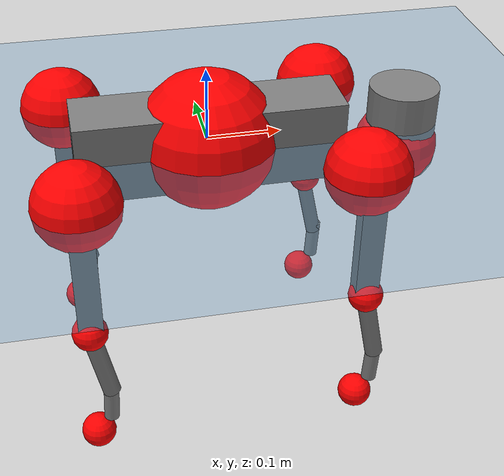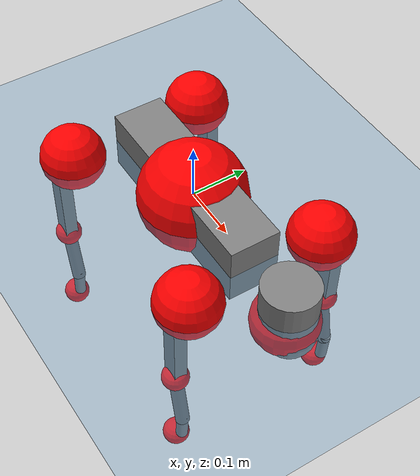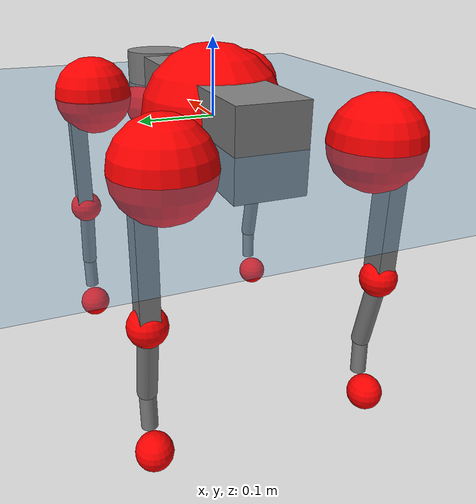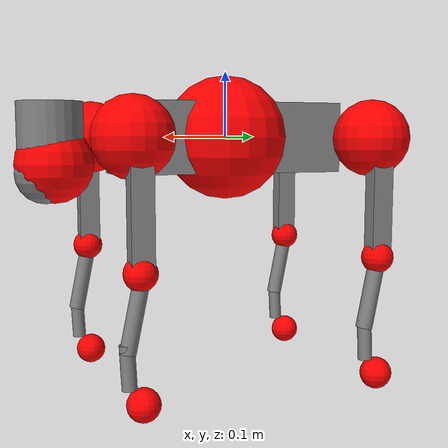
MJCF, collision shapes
<mujoco model="go2">
  <compiler angle="radian" assetdir="assets" balanceinertia="true" inertiafromgeom="false"/>

  <option timestep="0.005" density="1.2" viscosity="2e-05"/>

  <size nkey="1"/>

  <visual>
    <quality shadowsize="8192"/>
    <map shadowclip="0.5"/>
  </visual>

  <default>
    <default class="/">
      <geom contype="0" conaffinity="0" group="1" solref="-1000 -80"/>
      <site size="0.01 0.005 0.005" group="5"/>
      <general forcelimited="true" biastype="affine" gainprm="20" biasprm="0 -20 -0.5"/>
      <default class="go2">
        <joint armature="0.01" damping="0.01" frictionloss="0.2"/>
        <geom condim="1" margin="0.001"/>
        <default class="visual">
          <geom type="mesh" group="2"/>
        </default>
        <default class="collision">
          <geom group="3"/>
          <default class="foot">
            <geom size="0.022 0 0" condim="6" priority="1" friction="0.8 0.02 0.01" solimp="0.015 1 0.022"/>
          </default>
        </default>
        <default class="reward_collision_sphere">
          <geom group="5" rgba="1 0 0 1"/>
        </default>
      </default>
    </default>
  </default>

  <asset>
    <texture type="skybox" colorspace="auto" name="//unnamed_texture_0" builtin="gradient" rgb1="0.95 0.95 0.95" rgb2="0.95 0.95 0.95" width="100" height="600"/>
    <texture type="2d" colorspace="auto" name="texplane" builtin="checker" rgb1="0.345 0.575 0.748" rgb2="0.345 0.575 0.748" markrgb="1 1 1" width="512" height="512"/>
    <material name="MatPlane" class="/" texture="texplane" texuniform="true" texrepeat="2 2" specular="0.9"/>
    <material name="metal" class="/" rgba="0.9 0.95 0.95 1"/>
    <material name="black" class="/" rgba="0 0 0 1"/>
    <material name="white" class="/"/>
    <material name="gray" class="/" rgba="0.671705 0.692426 0.77427 1"/>
    <mesh name="base_0" class="/" file="base_0.obj"/>
    <mesh name="base_1" class="/" file="base_1.obj"/>
    <mesh name="base_2" class="/" file="base_2.obj"/>
    <mesh name="base_3" class="/" file="base_3.obj"/>
    <mesh name="base_4" class="/" file="base_4.obj"/>
    <mesh name="hip_0" class="/" file="hip_0.obj"/>
    <mesh name="hip_1" class="/" file="hip_1.obj"/>
    <mesh name="thigh_0" class="/" file="thigh_0.obj"/>
    <mesh name="thigh_1" class="/" file="thigh_1.obj"/>
    <mesh name="thigh_mirror_0" class="/" file="thigh_mirror_0.obj"/>
    <mesh name="thigh_mirror_1" class="/" file="thigh_mirror_1.obj"/>
    <mesh name="calf_0" class="/" file="calf_0.obj"/>
    <mesh name="calf_1" class="/" file="calf_1.obj"/>
    <mesh name="calf_mirror_0" class="/" file="calf_mirror_0.obj"/>
    <mesh name="calf_mirror_1" class="/" file="calf_mirror_1.obj"/>
    <mesh name="foot" class="/" file="foot.obj"/>
  </asset>

  <worldbody>
    <geom name="floor" class="/" size="100 100 0.125" type="plane" group="0" material="MatPlane"/>
    <light name="toplight_shadow" class="/" pos="0 0 5" dir="0.0990148 0.0990148 -0.990148" type="directional" ambient="0.04 0.04 0.04" diffuse="0.55 0.55 0.55" specular="0.12 0.12 0.12"/>
    <light name="toplight_fill" class="/" pos="0 0 5" dir="0.0990148 0.0990148 -0.990148" type="directional" castshadow="false" ambient="0.04 0.04 0.04" diffuse="0.3 0.3 0.3" specular="0.08 0.08 0.08"/>
    <body name="trunk" childclass="go2" pos="0.00054382 -0.000171974 -0.000601283" quat="1 0.000217168 -4.54427e-05 -1.67022e-05">
      <inertial pos="0.0187098 -0.00183225 -0.00540554" quat="-0.00200464 0.710924 0.00171119 0.703264" mass="5.91635" diaginertia="0.0839788 0.137968 0.0103619"/>
      <joint name="//unnamed_joint_0" type="free" armature="0" damping="0" frictionloss="0"/>
      <geom name="//unnamed_geom_1" class="visual" material="black" mesh="base_0"/>
      <geom name="//unnamed_geom_2" class="visual" material="black" mesh="base_1"/>
      <geom name="//unnamed_geom_3" class="visual" material="black" mesh="base_2"/>
      <geom name="//unnamed_geom_4" class="visual" material="white" mesh="base_3"/>
      <geom name="//unnamed_geom_5" class="visual" material="gray" mesh="base_4"/>
      <geom name="trunk_1" class="collision" size="0.179116 0.0445172 0.0542776" type="box"/>
      <geom name="trunk_2" class="collision" size="0.047612 0.0428508" pos="0.270971 0 0.00839813" type="cylinder"/>
      <geom name="trunk_3" class="collision" size="0.0447552" pos="0.278577 0 -0.0503888"/>
      <geom name="//unnamed_geom_9" class="reward_collision_sphere" size="0.0952239"/>
      <geom name="//unnamed_geom_10" class="reward_collision_sphere" size="0.0571344" pos="0.266217 0 -0.0377916"/>
      <site name="imu" pos="-0.0362474 -0.00105793 0.0445906" size="0.00952239"/>
      <camera name="track" pos="0 -2.13226 0" quat="0.707107 0.707107 0 0" mode="trackcom"/>
      <camera name="ego_camera" pos="0.296642 0 0.0377916" quat="-0.5 -0.5 0.5 0.5"/>
      <body name="FL_hip" pos="0.183602 0.0507457 0.000770077" quat="1 0.000231731 0.0001824 3.33299e-05">
        <inertial pos="-0.0031519 0.00284795 -0.000799335" quat="0.497061 0.499176 0.505309 0.498414" mass="0.569589" diaginertia="0.000667247 0.000822576 0.000197504"/>
        <joint name="FL_hip_joint" pos="0 0 0" axis="0.999942 -0.00793556 0.0072152" stiffness="0.00383035" range="-1.06059 1.04344" armature="0.0105846" damping="0.00157262" frictionloss="0.192438"/>
        <geom name="//unnamed_geom_11" class="visual" material="metal" mesh="hip_0"/>
        <geom name="//unnamed_geom_12" class="visual" material="gray" mesh="hip_1"/>
        <geom name="//unnamed_geom_13" class="collision" size="0.043803 0.0190448" pos="0 0.0852903 0" quat="0.707107 0.707107 0 0" type="cylinder"/>
        <geom name="//unnamed_geom_14" class="reward_collision_sphere" size="0.0571344" pos="0 0.074629 0"/>
        <body name="FL_thigh" pos="-0.000818993 0.103027 0.00208422" quat="1 0.000158148 0.00045499 0.00028333">
          <inertial pos="-0.00467205 -0.0236391 -0.0254557" quat="0.831876 0.0827352 -0.0192134 0.548423" mass="1.00153" diaginertia="0.00453474 0.00809891 0.000370138"/>
          <joint name="FL_thigh_joint" pos="0 0 0" axis="1.80254e-05 0.999998 0.00221572" range="-1.55388 3.47389" armature="0.00948278" damping="0.0150822" frictionloss="0.173123"/>
          <geom name="//unnamed_geom_15" class="visual" material="metal" mesh="thigh_0"/>
          <geom name="//unnamed_geom_16" class="visual" material="gray" mesh="thigh_1"/>
          <geom name="//unnamed_geom_17" class="collision" size="0.101413 0.0116649 0.0161881" pos="0 0 -0.0894401" quat="0.707107 0 0.707107 0" type="box"/>
          <body name="FL_calf" pos="0.000627458 -0.00200292 -0.181492" quat="1 5.59866e-05 0.000166887 0.000609031">
            <inertial pos="0.00684518 -0.000673541 -0.117276" quat="0.710709 0.00319773 -0.000769061 0.703478" mass="0.208735" diaginertia="0.00116309 0.00200767 2.24456e-05"/>
            <joint name="FL_calf_joint" pos="0 0 0" axis="-0.0074545 0.999965 0.00369628" stiffness="0.000621817" range="-2.73255 -0.856422" armature="0.00927572" damping="0" frictionloss="0.192509"/>
            <geom name="//unnamed_geom_18" class="visual" material="gray" mesh="calf_0"/>
            <geom name="//unnamed_geom_19" class="visual" material="black" mesh="calf_1"/>
            <geom name="FL_calf0" class="collision" size="0.0114269 0.0571344" pos="0.0076062 0 -0.0503888" quat="0.994493 0 -0.104807 0" type="cylinder"/>
            <geom name="//unnamed_geom_21" class="collision" size="0.0104746 0.0309478" pos="0.0190155 0 -0.124292" quat="0.999688 0 0.0249974 0" type="cylinder"/>
            <geom name="//unnamed_geom_22" class="visual" pos="0 0 -0.17888" quat="1 0 0 0" material="black" mesh="foot"/>
            <geom name="FL_foot" class="foot" size="0.0181833" pos="-0.00190155 0 -0.17888"/>
            <geom name="//unnamed_geom_24" class="reward_collision_sphere" size="0.023806"/>
            <geom name="//unnamed_geom_25" class="reward_collision_sphere" size="0.023806" pos="-0.00190155 0 -0.17888"/>
            <site name="FL_foot" class="foot" pos="-0.00190155 0 -0.17888" size="0.00952239"/>
          </body>
        </body>
      </body>
      <body name="FR_hip" pos="0.184222 -0.0490803 0.00102117" quat="1 -0.000114432 5.10021e-05 7.28547e-05">
        <inertial pos="-0.00321616 -0.00253488 0.000241401" quat="0.499115 0.504603 0.498459 0.497794" mass="0.591967" diaginertia="0.000695052 0.000820066 0.000200434"/>
        <joint name="FR_hip_joint" pos="0 0 0" axis="0.999984 -0.00228315 0.00525176" stiffness="0.00315662" range="-1.08826 1.05344" armature="0.00869" damping="0.0200153" frictionloss="0.172896"/>
        <geom name="//unnamed_geom_26" class="visual" pos="0 1.97157e-09 8.45648e-08" quat="4.63268e-05 1 0 0" material="metal" mesh="hip_0"/>
        <geom name="//unnamed_geom_27" class="visual" pos="0 3.19615e-09 -2.09161e-07" quat="4.63268e-05 1 0 0" material="gray" mesh="hip_1"/>
        <geom name="//unnamed_geom_28" class="collision" size="0.043803 0.0190448" pos="0 -0.0852903 0" quat="0.707107 0.707107 0 0" type="cylinder"/>
        <geom name="//unnamed_geom_29" class="reward_collision_sphere" size="0.0571344" pos="0 -0.074629 0"/>
        <body name="FR_thigh" pos="0.00123323 -0.0995371 -0.000129516" quat="1 1.1201e-05 -2.17019e-05 4.73101e-06">
          <inertial pos="-0.00331456 0.0241231 -0.0279003" quat="0.547449 -0.0206045 0.078289 0.832914" mass="0.955124" diaginertia="0.00459183 0.00795922 0.000358946"/>
          <joint name="FR_thigh_joint" pos="0 0 0" axis="0.0071835 -0.999966 -0.00393728" stiffness="0.001873" range="-3.44428 1.57918" armature="0.00968684" damping="0.00125603" frictionloss="0.214456"/>
          <geom name="//unnamed_geom_30" class="visual" material="metal" mesh="thigh_mirror_0"/>
          <geom name="//unnamed_geom_31" class="visual" material="gray" mesh="thigh_mirror_1"/>
          <geom name="//unnamed_geom_32" class="collision" size="0.101413 0.0116649 0.0161881" pos="0 0 -0.0894401" quat="0.707107 0 0.707107 0" type="box"/>
          <body name="FR_calf" pos="0.00172137 -0.00229751 -0.179583" quat="1 -0.000197099 -2.96341e-05 -3.28469e-05">
            <inertial pos="0.00608925 0.00040088 -0.116943" quat="0.70341 -0.00450826 0.00222231 0.710767" mass="0.208319" diaginertia="0.00112464 0.0019843 2.23261e-05"/>
            <joint name="FR_calf_joint" pos="0 0 0" axis="0.00155525 -0.999999 -0.000132046" stiffness="0.000725649" range="0.837943 2.73078" armature="0.0100096" damping="0.0105131" frictionloss="0.168974"/>
            <geom name="//unnamed_geom_33" class="visual" material="gray" mesh="calf_mirror_0"/>
            <geom name="//unnamed_geom_34" class="visual" material="black" mesh="calf_mirror_1"/>
            <geom name="FR_calf0" class="collision" size="0.0123791 0.0571344" pos="0.00950775 0 -0.0503888" quat="0.995004 0 -0.0998334 0" type="cylinder"/>
            <geom name="//unnamed_geom_36" class="collision" size="0.0104746 0.0309478" pos="0.0190155 0 -0.124292" quat="0.999688 0 0.0249974 0" type="cylinder"/>
            <geom name="//unnamed_geom_37" class="visual" pos="0 0 -0.17888" quat="1 0 0 0" material="black" mesh="foot"/>
            <geom name="FR_foot" class="foot" size="0.0201603" pos="-0.00190155 0 -0.17888"/>
            <geom name="//unnamed_geom_39" class="reward_collision_sphere" size="0.023806"/>
            <geom name="//unnamed_geom_40" class="reward_collision_sphere" size="0.023806" pos="-0.00190155 0 -0.17888"/>
            <site name="FR_foot" class="foot" pos="-0.00190155 0 -0.17888" size="0.00952239"/>
          </body>
        </body>
      </body>
      <body name="RL_hip" pos="-0.186222 0.0490885 -0.000700278" quat="1 4.60195e-05 -4.98868e-05 0.000120871">
        <inertial pos="0.004249 0.00448884 0.000810636" quat="0.505605 0.498087 0.49697 0.499293" mass="0.580574" diaginertia="0.000681744 0.000827507 0.000192038"/>
        <joint name="RL_hip_joint" pos="0 0 0" axis="-0.999864 0.0134079 -0.00959793" stiffness="0.00479538" range="-1.06983 0.996023" armature="0.00852461" damping="0.00649609" frictionloss="0.188609"/>
        <geom name="//unnamed_geom_41" class="visual" pos="-9.66657e-10 0 -1.89487e-07" quat="4.63268e-05 0 1 0" material="metal" mesh="hip_0"/>
        <geom name="//unnamed_geom_42" class="visual" pos="-1.56707e-09 0 -1.68048e-07" quat="4.63268e-05 0 1 0" material="gray" mesh="hip_1"/>
        <geom name="//unnamed_geom_43" class="collision" size="0.043803 0.0190448" pos="0 0.0852903 0" quat="0.707107 0.707107 0 0" type="cylinder"/>
        <geom name="//unnamed_geom_44" class="reward_collision_sphere" size="0.0571344" pos="0 0.074629 0"/>
        <body name="RL_thigh" pos="-0.000211974 0.0986762 0.000451733" quat="1 8.55993e-06 4.24599e-05 -6.94204e-05">
          <inertial pos="-0.0036353 -0.0221327 -0.0277219" quat="0.82873 0.085564 -0.0223537 0.552616" mass="0.993255" diaginertia="0.00463051 0.0080423 0.000362495"/>
          <joint name="RL_thigh_joint" pos="0 0 0" axis="0.00792765 0.999962 0.00360217" stiffness="0.0038248" range="-0.527533 4.53244" armature="0.00978061" damping="0.00584101" frictionloss="0.180713"/>
          <geom name="//unnamed_geom_45" class="visual" material="metal" mesh="thigh_0"/>
          <geom name="//unnamed_geom_46" class="visual" material="gray" mesh="thigh_1"/>
          <geom name="//unnamed_geom_47" class="collision" size="0.101413 0.0116649 0.0161881" pos="0 0 -0.0894401" quat="0.707107 0 0.707107 0" type="box"/>
          <body name="RL_calf" pos="0.000138716 -0.00014752 -0.177986" quat="1 -0.000427698 0.000324528 -0.000199874">
            <inertial pos="0.00601422 -0.000611478 -0.119094" quat="0.706498 0.00422879 -0.0152084 0.707539" mass="0.208349" diaginertia="0.0011634 0.00202236 2.15037e-05"/>
            <joint name="RL_calf_joint" pos="0 0 0" axis="-0.00496352 0.999936 0.0101806" stiffness="0.00176255" range="-2.72798 -0.834324" armature="0.00904363" damping="0.00375681" frictionloss="0.193936"/>
            <geom name="//unnamed_geom_48" class="visual" material="gray" mesh="calf_0"/>
            <geom name="//unnamed_geom_49" class="visual" material="black" mesh="calf_1"/>
            <geom name="RL_calf0" class="collision" size="0.0123791 0.0571344" pos="0.00950775 0 -0.0503888" quat="0.995004 0 -0.0998334 0" type="cylinder"/>
            <geom name="//unnamed_geom_51" class="collision" size="0.0104746 0.0309478" pos="0.0190155 0 -0.124292" quat="0.999688 0 0.0249974 0" type="cylinder"/>
            <geom name="//unnamed_geom_52" class="visual" pos="0 0 -0.17888" quat="1 0 0 0" material="black" mesh="foot"/>
            <geom name="RL_foot" class="foot" size="0.0188197" pos="-0.00190155 0 -0.17888"/>
            <geom name="//unnamed_geom_54" class="reward_collision_sphere" size="0.023806"/>
            <geom name="//unnamed_geom_55" class="reward_collision_sphere" size="0.023806" pos="-0.00190155 0 -0.17888"/>
            <site name="RL_foot" class="foot" pos="-0.00190155 0 -0.17888" size="0.00952239"/>
          </body>
        </body>
      </body>
      <body name="RR_hip" pos="-0.183212 -0.0525016 -0.000347497" quat="1 0.000225464 9.63721e-05 -0.000570927">
        <inertial pos="0.00298508 -0.00168136 0.00163735" quat="0.495523 0.497235 0.499864 0.507297" mass="0.590508" diaginertia="0.000690474 0.000825489 0.000196179"/>
        <joint name="RR_hip_joint" pos="0 0 0" axis="-1 -0.000108233 -0.000630699" range="-1.07627 1.09408" armature="0.00932259" damping="0.000810814" frictionloss="0.191557"/>
        <geom name="//unnamed_geom_56" class="visual" pos="9.70651e-10 1.97157e-09 -2.74052e-07" quat="2.14617e-09 4.63268e-05 4.63268e-05 -1" material="metal" mesh="hip_0"/>
        <geom name="//unnamed_geom_57" class="visual" pos="1.55719e-09 3.19615e-09 4.1113e-08" quat="2.14617e-09 4.63268e-05 4.63268e-05 -1" material="gray" mesh="hip_1"/>
        <geom name="//unnamed_geom_58" class="collision" size="0.043803 0.0190448" pos="0 -0.0852903 0" quat="0.707107 0.707107 0 0" type="cylinder"/>
        <geom name="//unnamed_geom_59" class="reward_collision_sphere" size="0.0571344" pos="0 -0.074629 0"/>
        <body name="RR_thigh" pos="0.000659373 -0.1019 0.00108206" quat="1 0.000207943 9.23224e-05 0.000105736">
          <inertial pos="-0.00276646 0.0243703 -0.0277496" quat="0.55157 -0.0205379 0.0846776 0.829565" mass="0.936333" diaginertia="0.00438923 0.00780815 0.000353374"/>
          <joint name="RR_thigh_joint" pos="0 0 0" axis="-0.00370787 -0.9999 0.0136256" stiffness="0.000709469" range="-4.53345 0.528866" armature="0.00997967" damping="0.0217368" frictionloss="0.189696"/>
          <geom name="//unnamed_geom_60" class="visual" material="metal" mesh="thigh_mirror_0"/>
          <geom name="//unnamed_geom_61" class="visual" material="gray" mesh="thigh_mirror_1"/>
          <geom name="//unnamed_geom_62" class="collision" size="0.101413 0.0116649 0.0161881" pos="0 0 -0.0894401" quat="0.707107 0 0.707107 0" type="box"/>
          <body name="RR_calf" pos="-0.00139823 0.000427906 -0.180778" quat="1 5.30408e-05 9.27237e-05 -0.00034955">
            <inertial pos="0.00677316 0.000645754 -0.118486" quat="0.702795 -0.00687957 0.00884237 0.711304" mass="0.210862" diaginertia="0.00116921 0.00206634 2.2401e-05"/>
            <joint name="RR_calf_joint" pos="0 0 0" axis="0.000818856 -0.999988 0.00485243" stiffness="0.00275813" range="0.837885 2.74509" armature="0.00844541" damping="0.00368358" frictionloss="0.190204"/>
            <geom name="//unnamed_geom_63" class="visual" material="gray" mesh="calf_mirror_0"/>
            <geom name="//unnamed_geom_64" class="visual" material="black" mesh="calf_mirror_1"/>
            <geom name="RR_calf0" class="collision" size="0.0123791 0.0571344" pos="0.00950775 0 -0.0503888" quat="0.995004 0 -0.0998334 0" type="cylinder"/>
            <geom name="//unnamed_geom_66" class="collision" size="0.0104746 0.0309478" pos="0.0190155 0 -0.124292" quat="0.999688 0 0.0249974 0" type="cylinder"/>
            <geom name="//unnamed_geom_67" class="visual" pos="0 0 -0.17888" quat="1 0 0 0" material="black" mesh="foot"/>
            <geom name="RR_foot" class="foot" size="0.0215162" pos="-0.00190155 0 -0.17888"/>
            <geom name="//unnamed_geom_69" class="reward_collision_sphere" size="0.023806"/>
            <geom name="//unnamed_geom_70" class="reward_collision_sphere" size="0.023806" pos="-0.00190155 0 -0.17888"/>
            <site name="RR_foot" class="foot" pos="-0.00190155 0 -0.17888" size="0.00952239"/>
          </body>
        </body>
      </body>
    </body>
  </worldbody>

  <contact>
    <pair class="/" geom1="floor" geom2="FL_foot" name="//unnamed_contact_0"/>
    <pair class="/" geom1="floor" geom2="FR_foot" name="//unnamed_contact_1"/>
    <pair class="/" geom1="floor" geom2="RL_foot" name="//unnamed_contact_2"/>
    <pair class="/" geom1="floor" geom2="RR_foot" name="//unnamed_contact_3"/>
  </contact>

  <actuator>
    <general name="FL_hip" class="/" joint="FL_hip_joint" forcerange="-22.5558 22.5558" gainprm="18.8324" biasprm="0 -18.8324 -0.488949"/>
    <general name="FL_thigh" class="/" joint="FL_thigh_joint" forcerange="-22.7047 22.7047" gainprm="18.8324" biasprm="0 -18.8324 -0.488949"/>
    <general name="FL_calf" class="/" joint="FL_calf_joint" forcerange="-44.3067 44.3067" gainprm="18.8324" biasprm="0 -18.8324 -0.488949"/>
    <general name="FR_hip" class="/" joint="FR_hip_joint" forcerange="-22.4425 22.4425" gainprm="18.8324" biasprm="0 -18.8324 -0.488949"/>
    <general name="FR_thigh" class="/" joint="FR_thigh_joint" forcerange="-21.915 21.915" gainprm="18.8324" biasprm="0 -18.8324 -0.488949"/>
    <general name="FR_calf" class="/" joint="FR_calf_joint" forcerange="-40.2027 40.2027" gainprm="18.8324" biasprm="0 -18.8324 -0.488949"/>
    <general name="RL_hip" class="/" joint="RL_hip_joint" forcerange="-22.589 22.589" gainprm="18.8324" biasprm="0 -18.8324 -0.488949"/>
    <general name="RL_thigh" class="/" joint="RL_thigh_joint" forcerange="-21.0556 21.0556" gainprm="18.8324" biasprm="0 -18.8324 -0.488949"/>
    <general name="RL_calf" class="/" joint="RL_calf_joint" forcerange="-44.2658 44.2658" gainprm="18.8324" biasprm="0 -18.8324 -0.488949"/>
    <general name="RR_hip" class="/" joint="RR_hip_joint" forcerange="-23.4433 23.4433" gainprm="18.8324" biasprm="0 -18.8324 -0.488949"/>
    <general name="RR_thigh" class="/" joint="RR_thigh_joint" forcerange="-20.6442 20.6442" gainprm="18.8324" biasprm="0 -18.8324 -0.488949"/>
    <general name="RR_calf" class="/" joint="RR_calf_joint" forcerange="-46.1085 46.1085" gainprm="18.8324" biasprm="0 -18.8324 -0.488949"/>
  </actuator>

  <sensor>
    <gyro site="imu" name="imu_angular_velocity"/>
    <velocimeter site="imu" name="imu_linear_velocity"/>
    <framelinvel objtype="site" objname="FL_foot" name="FL_foot_global_linear_velocity"/>
    <framelinvel objtype="site" objname="FR_foot" name="FR_foot_global_linear_velocity"/>
    <framelinvel objtype="site" objname="RL_foot" name="RL_foot_global_linear_velocity"/>
    <framelinvel objtype="site" objname="RR_foot" name="RR_foot_global_linear_velocity"/>
  </sensor>

  <keyframe>
    <key name="home" qpos="0 0 0.325 1 0 0 0 0.1 0.8 -1.5 -0.1 -0.8 1.5 -0.1 0.8 -1.5 0.1 -0.8 1.5"/>
  </keyframe>
</mujoco>
